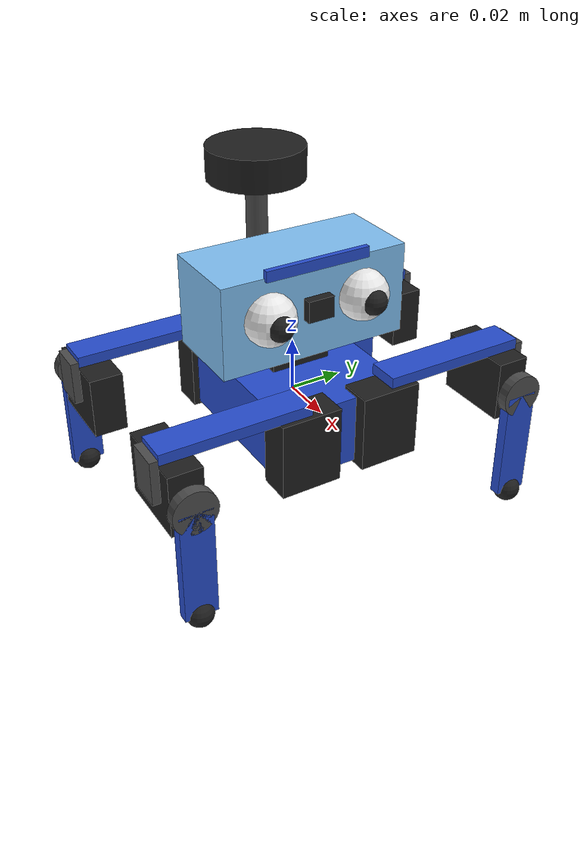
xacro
<?xml version="1.0"?>
<robot xmlns:xacro="http://www.ros.org/wiki/xacro" name="recon">

  <!-- ===================== dimensions [m] (estimated from the photos / MG90S datasheet) ===================== -->
  <xacro:property name="body_x" value="0.070"/>
  <xacro:property name="body_y" value="0.050"/>
  <xacro:property name="body_z" value="0.026"/>

  <xacro:property name="hip_x" value="0.034"/>      <!-- hip shaft distance from body centre, along x -->
  <xacro:property name="hip_y" value="0.022"/>      <!-- ... and along y -->
  <xacro:property name="hip_z" value="0.0155"/>     <!-- height of the femur plane above body centre -->

  <xacro:property name="femur"   value="0.043"/>    <!-- hip shaft -> leg-servo shaft, horizontal -->
  <xacro:property name="leg_dz"  value="-0.012"/>   <!-- leg-servo shaft is this much below the femur plane -->
  <xacro:property name="leg_off" value="0.0165"/>   <!-- leg plate sits in front of (back of) the leg servo -->
  <xacro:property name="leg_len" value="0.042"/>    <!-- leg-servo shaft -> foot ball centre -->
  <xacro:property name="foot_r"  value="0.005"/>

  <xacro:property name="neck_z"  value="0.0275"/>

  <xacro:property name="com_x" value="-0.005"/>

  <!-- MG90S: 22.8 x 12.2 x 28.5 mm, 13.4 g, ~0.22 N.m, ~10 rad/s -->
  <xacro:property name="servo_effort" value="0.22"/>
  <xacro:property name="servo_vel"    value="10.0"/>
  <xacro:property name="lim" value="${pi/2}"/>

  <xacro:property name="jfriction" value="0.02"/>   <!-- gear friction: keeps the legs from flopping before the commands start -->
  <xacro:property name="jdamping"  value="0.002"/>

  <!-- Gazebo material names -->
  <xacro:property name="m_body"  value="Gazebo/Blue"/>
  <xacro:property name="m_head"  value="Gazebo/SkyBlue"/>
  <xacro:property name="m_servo" value="Gazebo/FlatBlack"/>
  <xacro:property name="m_dark"  value="Gazebo/DarkGrey"/>
  <xacro:property name="m_white" value="Gazebo/White"/>
  <xacro:property name="m_black" value="Gazebo/Black"/>

  <!-- ===================== helpers ===================== -->
  <xacro:macro name="box_inertial" params="m x y z *origin">
    <inertial>
      <xacro:insert_block name="origin"/>
      <mass value="${m}"/>
      <inertia ixx="${m*(y*y+z*z)/12}" ixy="0" ixz="0"
               iyy="${m*(x*x+z*z)/12}" iyz="0"
               izz="${m*(x*x+y*y)/12}"/>
    </inertial>
  </xacro:macro>

  <!-- visual-only coloured part, fixed to `parent` -->
  <xacro:macro name="part" params="name parent mat xyz rpy:='0 0 0' *geometry">
    <link name="${name}">
      <visual><xacro:insert_block name="geometry"/></visual>
    </link>
    <joint name="${name}_fixed" type="fixed">
      <parent link="${parent}"/>
      <child link="${name}"/>
      <origin xyz="${xyz}" rpy="${rpy}"/>
    </joint>
    <gazebo reference="${name}"><material>${mat}</material></gazebo>
  </xacro:macro>

  <!-- ===================== body ===================== -->
  <link name="base_link">
    <visual>
      <geometry><box size="${body_x} ${body_y} ${body_z}"/></geometry>
    </visual>
    <collision>
      <geometry><box size="${body_x} ${body_y} ${body_z}"/></geometry>
    </collision>
    <!-- chassis + 2x18650 + ESP32 + 5 hip/neck servos -->
    <xacro:box_inertial m="0.170" x="${body_x}" y="${body_y}" z="${body_z}">
      <origin xyz="${com_x} 0 0"/>
    </xacro:box_inertial>
  </link>
  <gazebo reference="base_link"><material>${m_body}</material></gazebo>

  <!-- 4 hip servos (stand upright, shaft up) and the neck servo -->
  <xacro:macro name="hip_servo" params="name x y">
    <xacro:part name="${name}" parent="base_link" mat="${m_servo}" xyz="${x} ${y} 0">
      <geometry><box size="0.0122 0.0227 0.0285"/></geometry>
    </xacro:part>
  </xacro:macro>
  <xacro:hip_servo name="servo_fr" x="${hip_x}"  y="-0.016"/>
  <xacro:hip_servo name="servo_fl" x="${hip_x}"  y="0.016"/>
  <xacro:hip_servo name="servo_br" x="${-hip_x}" y="-0.016"/>
  <xacro:hip_servo name="servo_bl" x="${-hip_x}" y="0.016"/>
  <xacro:part name="servo_neck" parent="base_link" mat="${m_servo}" xyz="0 0 ${body_z/2 + 0.0095}">
    <geometry><box size="0.0122 0.0227 0.019"/></geometry>
  </xacro:part>

  <!-- ===================== head (neck servo + box with eyes) ===================== -->
  <link name="head_link">
    <visual>
      <origin xyz="0 0 0.0115"/>
      <geometry><box size="0.032 0.072 0.034"/></geometry>
    </visual>
    <xacro:box_inertial m="0.035" x="0.032" y="0.072" z="0.034">
      <origin xyz="0 0 0.0115"/>
    </xacro:box_inertial>
  </link>
  <gazebo reference="head_link"><material>${m_head}</material></gazebo>

  <joint name="neck_joint" type="revolute">
    <parent link="base_link"/>
    <child link="head_link"/>
    <origin xyz="0 0 ${neck_z}"/>
    <axis xyz="0 0 1"/>
    <limit lower="-1.2" upper="1.2" effort="${servo_effort}" velocity="${servo_vel}"/>
    <dynamics damping="${jdamping}" friction="${jfriction}"/>
  </joint>

  <xacro:part name="neck_horn" parent="head_link" mat="${m_dark}" xyz="0 0 0.002">
    <geometry><cylinder radius="0.007" length="0.006"/></geometry>
  </xacro:part>
  <xacro:part name="eye_l" parent="head_link" mat="${m_white}" xyz="0.0165 0.0185 0.0135">
    <geometry><sphere radius="0.0095"/></geometry>
  </xacro:part>
  <xacro:part name="eye_r" parent="head_link" mat="${m_white}" xyz="0.0165 -0.0185 0.0135">
    <geometry><sphere radius="0.0095"/></geometry>
  </xacro:part>
  <xacro:part name="pupil_l" parent="head_link" mat="${m_black}" xyz="0.0235 0.0185 0.0135">
    <geometry><sphere radius="0.0048"/></geometry>
  </xacro:part>
  <xacro:part name="pupil_r" parent="head_link" mat="${m_black}" xyz="0.0235 -0.0185 0.0135">
    <geometry><sphere radius="0.0048"/></geometry>
  </xacro:part>
  <xacro:part name="brow" parent="head_link" mat="${m_body}" xyz="0.0165 0 0.0295">
    <geometry><box size="0.002 0.040 0.004"/></geometry>
  </xacro:part>

  <!-- ===================== one leg: hip servo + femur + leg servo + leg ===================== -->
  <xacro:macro name="leg" params="name px py s fb">

    <link name="${name}_hip_link">
      <visual>   <!-- horn + femur arm -->
        <origin xyz="0 ${s*femur/2} 0.002"/>
        <geometry><box size="0.012 ${femur+0.012} 0.004"/></geometry>
      </visual>
      <xacro:box_inertial m="0.026" x="0.028" y="0.05" z="0.02">
        <origin xyz="0 ${s*femur*0.8} -0.004"/>
      </xacro:box_inertial>
    </link>
    <gazebo reference="${name}_hip_link"><material>${m_body}</material></gazebo>

    <joint name="${name}_hip_joint" type="revolute">
      <parent link="base_link"/>
      <child link="${name}_hip_link"/>
      <origin xyz="${px*hip_x} ${py*hip_y} ${hip_z}"/>
      <axis xyz="0 0 1"/>
      <limit lower="${-lim}" upper="${lim}" effort="${servo_effort}" velocity="${servo_vel}"/>
      <dynamics damping="${jdamping}" friction="${jfriction}"/>
    </joint>

    <!-- leg servo (shaft along x) and the U bracket joining it to the femur -->
    <xacro:part name="${name}_servo" parent="${name}_hip_link" mat="${m_servo}"
                xyz="${-fb*0.002} ${s*femur} ${leg_dz}">
      <geometry><box size="0.0285 0.0122 0.0227"/></geometry>
    </xacro:part>
    <xacro:part name="${name}_bracket" parent="${name}_hip_link" mat="${m_dark}"
                xyz="0 ${s*(femur+0.0075)} ${leg_dz/2}">
      <geometry><box size="0.012 0.003 ${-leg_dz+0.004}"/></geometry>
    </xacro:part>

    <link name="${name}_leg_link">
      <visual>   <!-- leg plate -->
        <origin xyz="${fb*leg_off} 0 ${-leg_len/2}"/>
        <geometry><box size="0.004 0.012 ${leg_len}"/></geometry>
      </visual>
      <collision>
        <origin xyz="${fb*leg_off} 0 ${-leg_len}"/>
        <geometry><sphere radius="${foot_r}"/></geometry>
      </collision>
      <collision>
        <origin xyz="${fb*leg_off} 0 ${-leg_len/2}"/>
        <geometry><box size="0.004 0.012 ${leg_len}"/></geometry>
      </collision>
      <xacro:box_inertial m="0.010" x="0.004" y="0.012" z="${leg_len}">
        <origin xyz="${fb*leg_off} 0 ${-leg_len/2}"/>
      </xacro:box_inertial>
    </link>

    <joint name="${name}_leg_joint" type="revolute">
      <parent link="${name}_hip_link"/>
      <child link="${name}_leg_link"/>
      <origin xyz="0 ${s*femur} ${leg_dz}"/>
      <axis xyz="${fb} 0 0"/>
      <limit lower="${-lim}" upper="${lim}" effort="${servo_effort}" velocity="${servo_vel}"/>
      <dynamics damping="${jdamping}" friction="${jfriction}"/>
    </joint>

    <xacro:part name="${name}_horn" parent="${name}_leg_link" mat="${m_dark}" xyz="${fb*leg_off} 0 0"
                rpy="0 ${pi/2} 0">
      <geometry><cylinder radius="0.008" length="0.004"/></geometry>
    </xacro:part>
    <xacro:part name="${name}_foot" parent="${name}_leg_link" mat="${m_black}" xyz="${fb*leg_off} 0 ${-leg_len}">
      <geometry><sphere radius="${foot_r}"/></geometry>
    </xacro:part>

    <gazebo reference="${name}_leg_link">
      <material>${m_body}</material>
      <mu1>1.2</mu1>
      <mu2>1.2</mu2>
      <kp>200000.0</kp>
      <kd>10.0</kd>
      <minDepth>0.0003</minDepth>
      <maxVel>0.05</maxVel>
    </gazebo>
  </xacro:macro>

  <xacro:leg name="front_right" px="1"  py="-1" s="-1" fb="1"/>
  <xacro:leg name="front_left"  px="1"  py="1"  s="1"  fb="1"/>
  <xacro:leg name="back_right"  px="-1" py="-1" s="-1" fb="-1"/>
  <xacro:leg name="back_left"   px="-1" py="1"  s="1"  fb="-1"/>

  <!-- ===================== sensors (massless, so the gait balance is unchanged) ===================== -->
  <!-- 2D lidar on a post at the rear, above the head so it can see all around.  Range is limited to
       2 m: the body rocks a few degrees while walking and a longer range would hit the floor. -->
  <xacro:part name="laser_post" parent="base_link" mat="${m_dark}" xyz="-0.025 0 0.044">
    <geometry><cylinder radius="0.004" length="0.062"/></geometry>
  </xacro:part>
  <link name="laser_link">
    <visual><geometry><cylinder radius="0.018" length="0.012"/></geometry></visual>
  </link>
  <joint name="laser_joint" type="fixed">
    <parent link="base_link"/><child link="laser_link"/><origin xyz="-0.025 0 0.08"/>
  </joint>
  <gazebo reference="laser_link">
    <material>${m_servo}</material>
    <sensor name="lidar" type="ray">
      <always_on>true</always_on><visualize>false</visualize><update_rate>8</update_rate>
      <ray>
        <scan><horizontal><samples>360</samples><resolution>1</resolution>
          <min_angle>-3.14159</min_angle><max_angle>3.14159</max_angle></horizontal></scan>
        <range><min>0.10</min><max>2.0</max><resolution>0.01</resolution></range>
        <noise><type>gaussian</type><mean>0.0</mean><stddev>0.004</stddev></noise>
      </ray>
      <plugin name="lidar_plugin" filename="libgazebo_ros_ray_sensor.so">
        <ros><remapping>~/out:=scan</remapping></ros>
        <output_type>sensor_msgs/LaserScan</output_type>
        <frame_name>laser_link</frame_name>
      </plugin>
    </sensor>
  </gazebo>

  <!-- camera between the eyes: this is "what the robot sees" -->
  <link name="camera_link">
    <visual><geometry><box size="0.004 0.010 0.008"/></geometry></visual>
  </link>
  <joint name="camera_joint" type="fixed">
    <parent link="head_link"/><child link="camera_link"/><origin xyz="0.0175 0 0.0135"/>
  </joint>
  <gazebo reference="camera_link">
    <material>${m_black}</material>
    <sensor name="camera" type="camera">
      <always_on>true</always_on><update_rate>10</update_rate>
      <camera>
        <horizontal_fov>1.4</horizontal_fov>
        <image><width>320</width><height>240</height><format>R8G8B8</format></image>
        <clip><near>0.02</near><far>8.0</far></clip>
      </camera>
      <plugin name="camera_plugin" filename="libgazebo_ros_camera.so">
        <camera_name>camera</camera_name>
        <frame_name>camera_link</frame_name>
      </plugin>
    </sensor>
  </gazebo>

  <!-- IMU in the body -->
  <gazebo reference="base_link">
    <sensor name="imu" type="imu">
      <always_on>true</always_on><update_rate>50</update_rate>
      <plugin name="imu_plugin" filename="libgazebo_ros_imu_sensor.so">
        <ros><remapping>~/out:=imu</remapping></ros>
        <frame_name>base_link</frame_name>
      </plugin>
    </sensor>
  </gazebo>

  <!-- ===================== servo model ===================== -->
  <gazebo>
    <plugin name="recon_servos" filename="librecon_servo_plugin.so">
      <kp>1.5</kp>
      <kd>0.007</kd>
      <max_torque>0.25</max_torque>
      <joint>front_right_hip_joint</joint>
      <joint>front_left_hip_joint</joint>
      <joint>front_right_leg_joint</joint>
      <joint>front_left_leg_joint</joint>
      <joint>back_right_hip_joint</joint>
      <joint>back_left_hip_joint</joint>
      <joint>back_right_leg_joint</joint>
      <joint>back_left_leg_joint</joint>
      <joint>neck_joint</joint>
    </plugin>
  </gazebo>

</robot>
